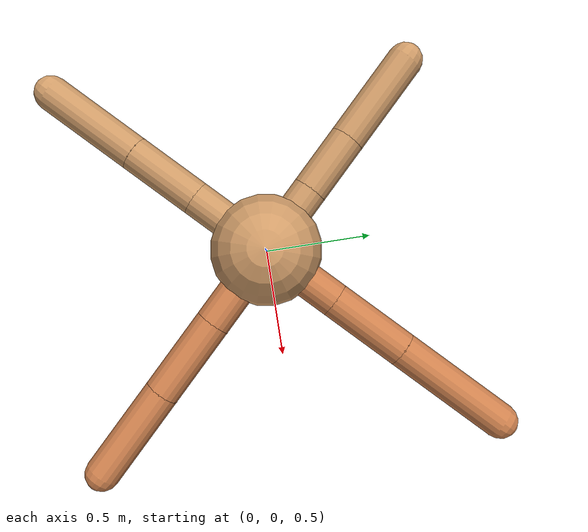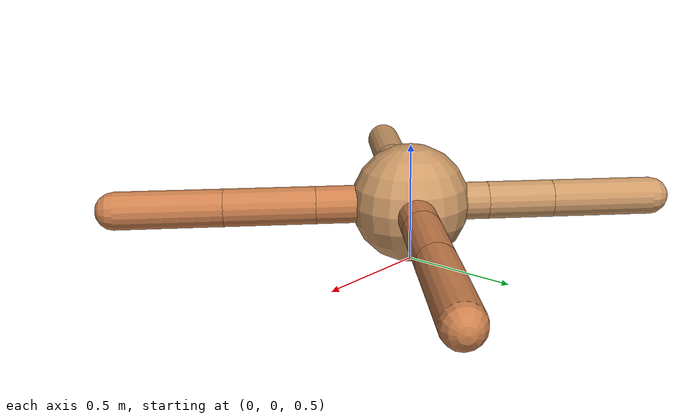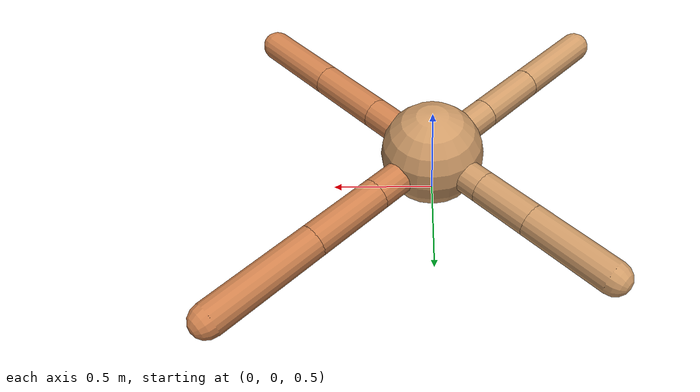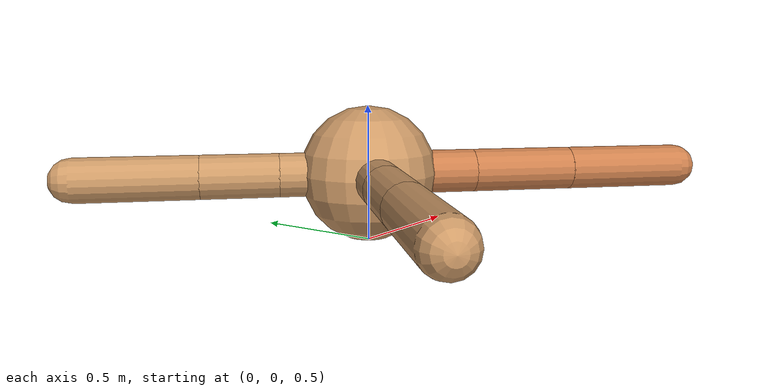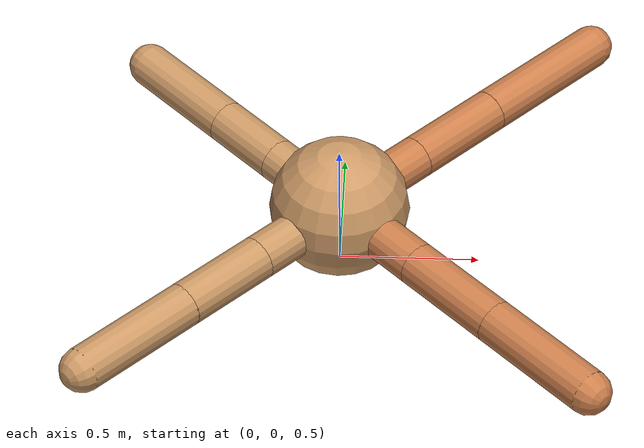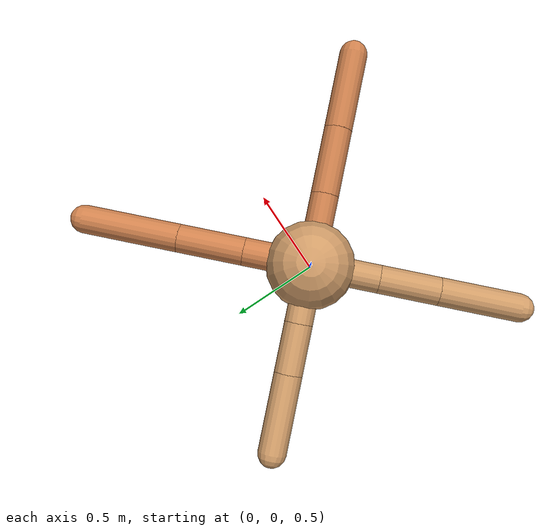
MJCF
<mujoco model="ant">
  <compiler angle="degree" coordinate="local" inertiafromgeom="true" />
  <option integrator="RK4" timestep="0.01" />
  <custom>
    <numeric data="0.0 0.0 0.55 1.0 0.0 0.0 0.0 0.0 1.0 0.0 -1.0 0.0 -1.0 0.0 1.0" name="init_qpos" />
  </custom>
  <default>
    <joint armature="1" damping="1" limited="true" />
    <geom conaffinity="0" condim="3" density="5.0" friction="1.5 0.1 0.1" margin="0.01" rgba="0.8 0.6 0.4 1" />
  </default>
  <worldbody>
    <body name="torso" pos="0 0 0.75">
      <geom name="torso_geom" pos="0 0 0" size="0.25" type="sphere" />

      <body name="front_left_leg" pos="0 0 0">
        <geom fromto="0.0 0.0 0.0 0.2660517492932219 0.2660517492932219 0.0" name="aux_1_geom" size="0.08" type="capsule" rgba=".8 .5 .3 1" />
        <body name="aux_1" pos="0.2660517492932219 0.2660517492932219 0.0">
          <joint axis="0 0 1" name="hip_1" pos="0.0 0.0 0.0" range="-40 40" type="hinge" />
          <geom fromto="0.0 0.0 0.0 0.2612192879820904 0.2612192879820904 0.0" name="left_leg_geom" size="0.08" type="capsule" rgba=".8 .5 .3 1" />
          <body pos="0.2612192879820904 0.2612192879820904 0.0" name="front_left_foot">
            <joint axis="-1 1 0" name="ankle_1" pos="0.0 0.0 0.0" range="30 100" type="hinge" />
            <geom fromto="0.0 0.0 0.0 0.37890193247540743 0.37890193247540743 0.0" name="left_ankle_geom" size="0.08" type="capsule" rgba=".8 .5 .3 1" />
          </body>
        </body>
      </body>
      <body name="front_right_leg" pos="0 0 0">
        <geom fromto="0.0 0.0 0.0 -0.23189128684207622 0.23189128684207622 0.0" name="aux_2_geom" size="0.08" type="capsule" />
        <body name="aux_2" pos="-0.23189128684207622 0.23189128684207622 0.0">
          <joint axis="0 0 1" name="hip_2" pos="0.0 0.0 0.0" range="-40 40" type="hinge" />
          <geom fromto="0.0 0.0 0.0 -0.1978880077296321 0.1978880077296321 0.0" name="right_leg_geom" size="0.08" type="capsule" />
          <body pos="-0.1978880077296321 0.1978880077296321 0.0" name="front_right_foot">
            <joint axis="1 1 0" name="ankle_2" pos="0.0 0.0 0.0" range="-100 -30" type="hinge" />
            <geom fromto="0.0 0.0 0.0 -0.30611480402241403 0.30611480402241403 0.0" name="right_ankle_geom" size="0.08" type="capsule" />
          </body>
        </body>
      </body>
      <body name="left_back_leg" pos="0 0 0">
        <geom fromto="0.0 0.0 0.0 -0.2734957968998167 -0.2734957968998167 0.0" name="aux_3_geom" size="0.08" type="capsule" />
        <body name="aux_3" pos="-0.2734957968998167 -0.2734957968998167 0.0">
          <joint axis="0 0 1" name="hip_3" pos="0.0 0.0 0.0" range="-40 40" type="hinge" />
          <geom fromto="0.0 0.0 0.0 -0.2379153907364156 -0.2379153907364156 0.0" name="back_leg_geom" size="0.08" type="capsule" />
          <body pos="-0.2379153907364156 -0.2379153907364156 0.0" name="left_back_foot">
            <joint axis="-1 1 0" name="ankle_3" pos="0.0 0.0 0.0" range="-100 -30" type="hinge" />
            <geom fromto="0.0 0.0 0.0 -0.3187942778772031 -0.3187942778772031 0.0" name="third_ankle_geom" size="0.08" type="capsule" />
          </body>
        </body>
      </body>
      <body name="right_back_leg" pos="0 0 0">
        <geom fromto="0.0 0.0 0.0 0.28316116547812203 -0.28316116547812203 0.0" name="aux_4_geom" size="0.08" type="capsule" rgba=".8 .5 .3 1" />
        <body name="aux_4" pos="0.28316116547812203 -0.28316116547812203 0.0">
          <joint axis="0 0 1" name="hip_4" pos="0.0 0.0 0.0" range="-40 40" type="hinge" />
          <geom fromto="0.0 0.0 0.0 0.26997055454852165 -0.26997055454852165 0.0" name="rightback_leg_geom" size="0.08" type="capsule" rgba=".8 .5 .3 1" />
          <body pos="0.26997055454852165 -0.26997055454852165 0.0" name="right_back_foot">
            <joint axis="1 1 0" name="ankle_4" pos="0.0 0.0 0.0" range="30 100" type="hinge" />
            <geom fromto="0.0 0.0 0.0 0.3140573242289749 -0.3140573242289749 0.0" name="fourth_ankle_geom" size="0.08" type="capsule" rgba=".8 .5 .3 1" />
          </body>
        </body>
      </body>
    </body>
  </worldbody>
  <actuator>
    <motor ctrllimited="true" ctrlrange="-1.0 1.0" joint="hip_4" gear="150" />
    <motor ctrllimited="true" ctrlrange="-1.0 1.0" joint="ankle_4" gear="150" />
    <motor ctrllimited="true" ctrlrange="-1.0 1.0" joint="hip_1" gear="150" />
    <motor ctrllimited="true" ctrlrange="-1.0 1.0" joint="ankle_1" gear="150" />
    <motor ctrllimited="true" ctrlrange="-1.0 1.0" joint="hip_2" gear="150" />
    <motor ctrllimited="true" ctrlrange="-1.0 1.0" joint="ankle_2" gear="150" />
    <motor ctrllimited="true" ctrlrange="-1.0 1.0" joint="hip_3" gear="150" />
    <motor ctrllimited="true" ctrlrange="-1.0 1.0" joint="ankle_3" gear="150" />
  </actuator>
</mujoco>
